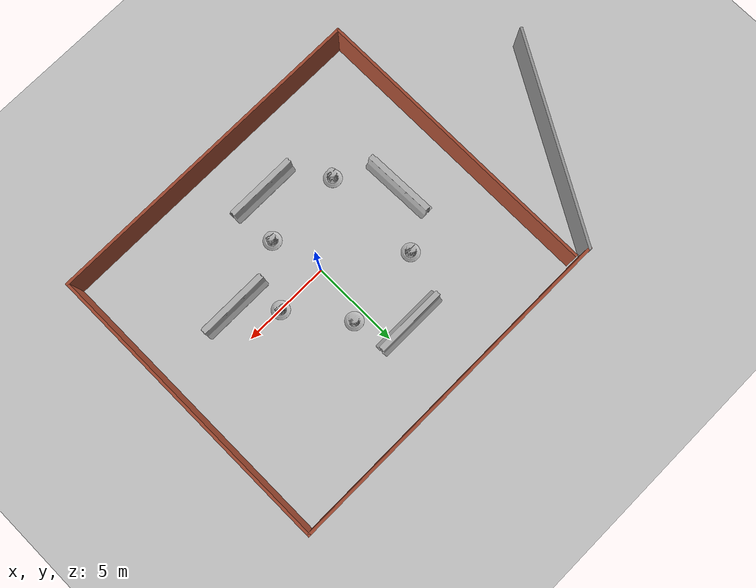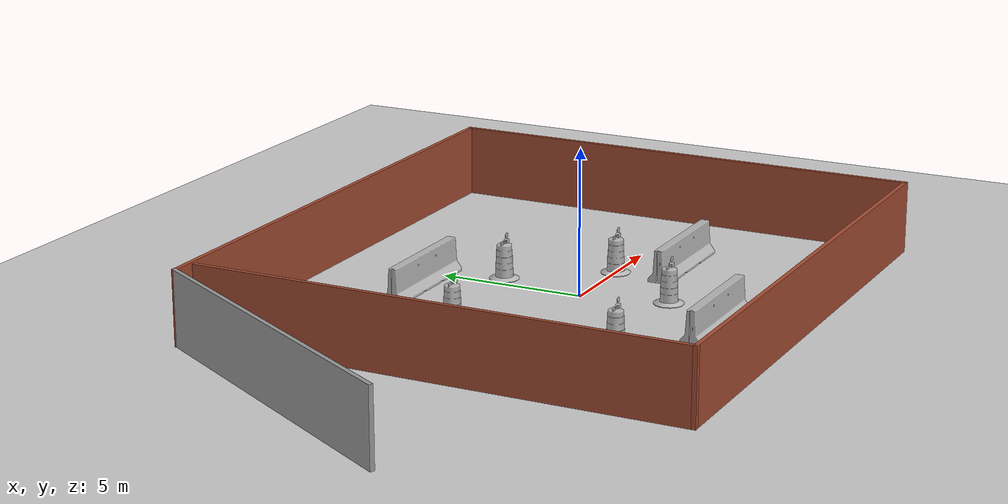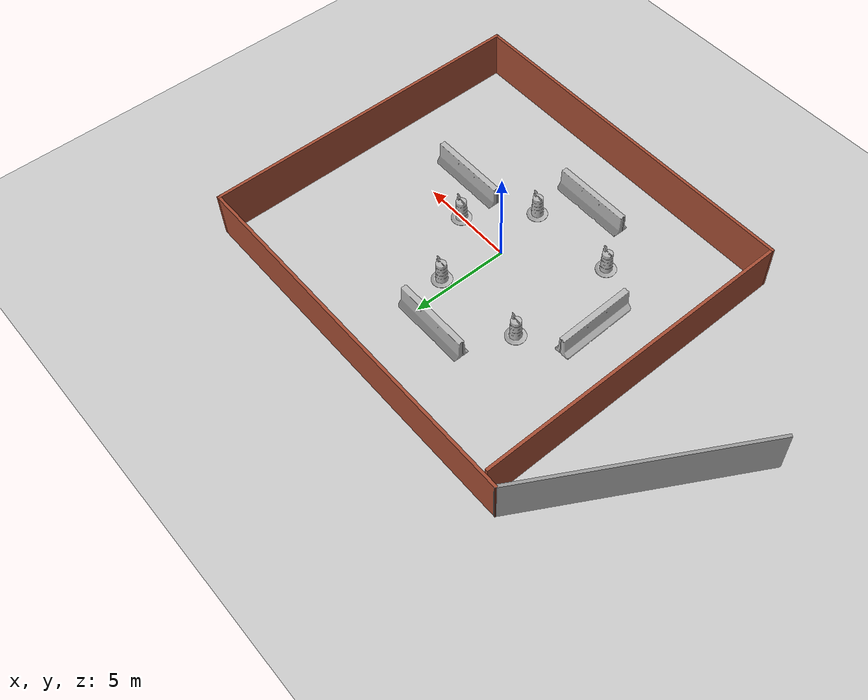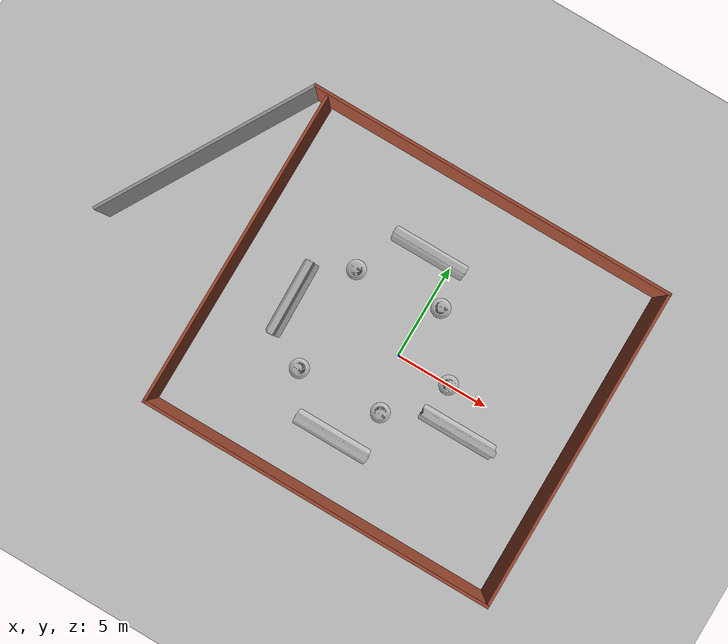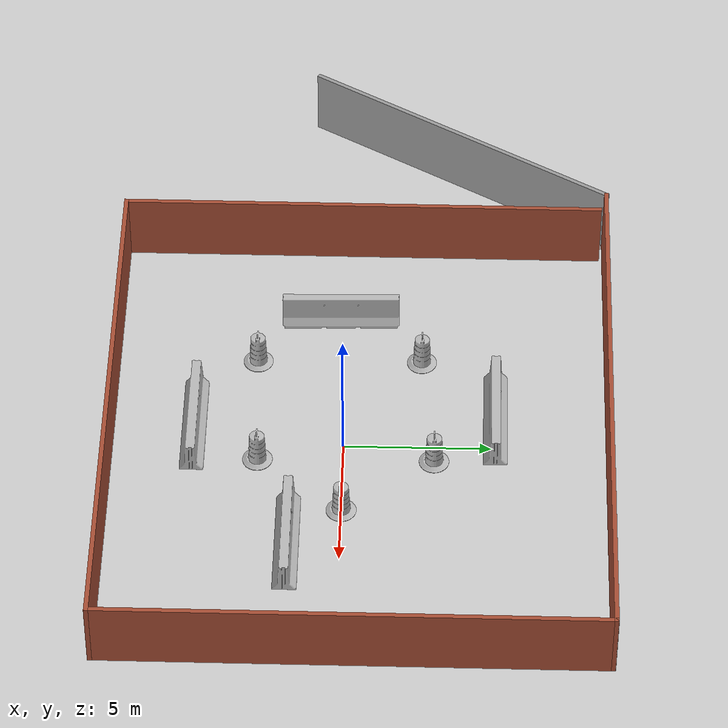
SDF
<sdf version="1.7">
 <world name="default">
  <light name="sun" type="directional">
   <pose>0 0 10 0 -0 0</pose>
   <diffuse>0.8 0.8 0.8 1</diffuse>
   <specular>0.2 0.2 0.2 1</specular>
   <attenuation>
    <range>1000</range>
    <constant>0.9</constant>
    <linear>0.01</linear>
    <quadratic>0.001</quadratic>
   </attenuation>
   <direction>-0.5 0.1 -0.9</direction>
   <spot><inner_angle>0</inner_angle><outer_angle>0</outer_angle><falloff>0</falloff></spot>
  </light>
  <model name="ground_plane">
   <static>1</static>
   <link name="link">
    <collision name="collision">
     <geometry><plane><normal>0 0 1</normal><size>100 100</size></plane></geometry>
     <surface><friction><ode><mu>100</mu><mu2>50</mu2></ode></friction></surface>
    </collision>
    <visual name="visual">
     <cast_shadows>0</cast_shadows>
     <geometry><plane><normal>0 0 1</normal><size>100 100</size></plane></geometry>
     <material>
      <script><uri>file://media/materials/scripts/gazebo.material</uri><name>Gazebo/Grey</name></script>
     </material>
    </visual>
   </link>
  </model>
  <gravity>0 0 -9.8</gravity>
  <magnetic_field>6e-06 2.3e-05 -4.2e-05</magnetic_field>
  <atmosphere type="adiabatic"/>
  <physics type="ode">
   <max_step_size>0.001</max_step_size>
   <real_time_factor>1</real_time_factor>
   <real_time_update_rate>1000</real_time_update_rate>
  </physics>
  <scene><ambient>0.4 0.4 0.4 1</ambient><background>0.7 0.7 0.7 1</background><shadows>1</shadows></scene>
  <audio><device>default</device></audio>
  <spherical_coordinates>
   <surface_model>EARTH_WGS84</surface_model>
   <latitude_deg>0</latitude_deg>
   <longitude_deg>0</longitude_deg>
   <elevation>0</elevation>
   <heading_deg>0</heading_deg>
  </spherical_coordinates>
  <model name="wall">
   <pose>-3.22203 0.54899 0 0 -0 0</pose>
   <link name="Wall_3">
    <collision name="Wall_3_Collision">
     <geometry><box><size>12 0.15 2.5</size></box></geometry>
     <pose>0 0 1.25 0 -0 0</pose>
    </collision>
    <visual name="Wall_3_Visual">
     <pose>0 0 1.25 0 -0 0</pose>
     <geometry><box><size>12 0.15 2.5</size></box></geometry>
     <material>
      <script><uri>file://media/materials/scripts/gazebo.material</uri><name>Gazebo/Grey</name></script>
      <ambient>1 1 1 1</ambient>
     </material>
     <meta><layer>0</layer></meta>
    </visual>
    <pose>-9.66127 3.28007 0 0 -0 1.0472</pose>
   </link>
   <link name="Wall_4">
    <collision name="Wall_4_Collision">
     <geometry><box><size>19.5 0.15 2.5</size></box></geometry>
     <pose>0 0 1.25 0 -0 0</pose>
    </collision>
    <visual name="Wall_4_Visual">
     <pose>0 0 1.25 0 -0 0</pose>
     <geometry><box><size>19.5 0.15 2.5</size></box></geometry>
     <material>
      <script><uri>file://media/materials/scripts/gazebo.material</uri><name>Gazebo/Bricks</name></script>
      <ambient>1 1 1 1</ambient>
     </material>
     <meta><layer>0</layer></meta>
    </visual>
    <pose>2.97623 8.41127 0 0 -0 0</pose>
   </link>
   <link name="Wall_5">
    <collision name="Wall_5_Collision">
     <geometry><box><size>17 0.15 2.5</size></box></geometry>
     <pose>0 0 1.25 0 -0 0</pose>
    </collision>
    <visual name="Wall_5_Visual">
     <pose>0 0 1.25 0 -0 0</pose>
     <geometry><box><size>17 0.15 2.5</size></box></geometry>
     <material>
      <script><uri>file://media/materials/scripts/gazebo.material</uri><name>Gazebo/Bricks</name></script>
      <ambient>1 1 1 1</ambient>
     </material>
     <meta><layer>0</layer></meta>
    </visual>
    <pose>12.6512 -0.013726 0 0 -0 -1.5708</pose>
   </link>
   <link name="Wall_6">
    <collision name="Wall_6_Collision">
     <geometry><box><size>18.75 0.15 2.5</size></box></geometry>
     <pose>0 0 1.25 0 -0 0</pose>
    </collision>
    <visual name="Wall_6_Visual">
     <pose>0 0 1.25 0 -0 0</pose>
     <geometry><box><size>18.75 0.15 2.5</size></box></geometry>
     <material>
      <script><uri>file://media/materials/scripts/gazebo.material</uri><name>Gazebo/Bricks</name></script>
      <ambient>1 1 1 1</ambient>
     </material>
     <meta><layer>0</layer></meta>
    </visual>
    <pose>3.35123 -8.43873 0 0 -0 3.14159</pose>
   </link>
   <link name="Wall_7">
    <collision name="Wall_7_Collision">
     <geometry><box><size>16.75 0.15 2.5</size></box></geometry>
     <pose>0 0 1.25 0 -0 0</pose>
    </collision>
    <visual name="Wall_7_Visual">
     <pose>0 0 1.25 0 -0 0</pose>
     <geometry><box><size>16.75 0.15 2.5</size></box></geometry>
     <material>
      <script><uri>file://media/materials/scripts/gazebo.material</uri><name>Gazebo/Bricks</name></script>
      <ambient>1 1 1 1</ambient>
     </material>
     <meta><layer>0</layer></meta>
    </visual>
    <pose>-5.94877 -0.138726 0 0 -0 1.5708</pose>
   </link>
   <static>1</static>
  </model>
  <model name="Construction Barrel">
   <link name="link">
    <inertial>
     <pose>0 0 0.4 0 -0 0</pose>
     <mass>500</mass>
     <inertia><ixx>51.2096</ixx><iyy>51.2096</iyy><izz>25</izz><ixy>0</ixy><ixz>0</ixz><iyz>0</iyz></inertia>
    </inertial>
    <collision name="collision">
     <geometry><mesh><uri>model://construction_barrel/meshes/construction_barrel.dae</uri></mesh></geometry>
    </collision>
    <visual name="visual">
     <geometry><mesh><uri>model://construction_barrel/meshes/construction_barrel.dae</uri></mesh></geometry>
    </visual>
   </link>
   <pose>-3.87499 -3.05146 0 0 -0 0</pose>
  </model>
  <model name="Construction Barrel_0">
   <link name="link">
    <inertial>
     <pose>0 0 0.4 0 -0 0</pose>
     <mass>500</mass>
     <inertia><ixx>51.2096</ixx><iyy>51.2096</iyy><izz>25</izz><ixy>0</ixy><ixz>0</ixz><iyz>0</iyz></inertia>
    </inertial>
    <collision name="collision">
     <geometry><mesh><uri>model://construction_barrel/meshes/construction_barrel.dae</uri></mesh></geometry>
    </collision>
    <visual name="visual">
     <geometry><mesh><uri>model://construction_barrel/meshes/construction_barrel.dae</uri></mesh></geometry>
    </visual>
   </link>
   <pose>0.677507 -2.88607 0 0 -0 0</pose>
  </model>
  <model name="Construction Barrel_1">
   <link name="link">
    <inertial>
     <pose>0 0 0.4 0 -0 0</pose>
     <mass>500</mass>
     <inertia><ixx>51.2096</ixx><iyy>51.2096</iyy><izz>25</izz><ixy>0</ixy><ixz>0</ixz><iyz>0</iyz></inertia>
    </inertial>
    <collision name="collision">
     <geometry><mesh><uri>model://construction_barrel/meshes/construction_barrel.dae</uri></mesh></geometry>
    </collision>
    <visual name="visual">
     <geometry><mesh><uri>model://construction_barrel/meshes/construction_barrel.dae</uri></mesh></geometry>
    </visual>
   </link>
   <pose>-3.94857 2.59582 0 0 -0 0</pose>
  </model>
  <model name="Construction Barrel_2">
   <link name="link">
    <inertial>
     <pose>0 0 0.4 0 -0 0</pose>
     <mass>500</mass>
     <inertia><ixx>51.2096</ixx><iyy>51.2096</iyy><izz>25</izz><ixy>0</ixy><ixz>0</ixz><iyz>0</iyz></inertia>
    </inertial>
    <collision name="collision">
     <geometry><mesh><uri>model://construction_barrel/meshes/construction_barrel.dae</uri></mesh></geometry>
    </collision>
    <visual name="visual">
     <geometry><mesh><uri>model://construction_barrel/meshes/construction_barrel.dae</uri></mesh></geometry>
    </visual>
   </link>
   <pose>0.632377 3.07651 0 0 -0 0</pose>
  </model>
  <model name="Construction Barrel_3">
   <link name="link">
    <inertial>
     <pose>0 0 0.4 0 -0 0</pose>
     <mass>500</mass>
     <inertia><ixx>51.2096</ixx><iyy>51.2096</iyy><izz>25</izz><ixy>0</ixy><ixz>0</ixz><iyz>0</iyz></inertia>
    </inertial>
    <collision name="collision">
     <geometry><mesh><uri>model://construction_barrel/meshes/construction_barrel.dae</uri></mesh></geometry>
    </collision>
    <visual name="visual">
     <geometry><mesh><uri>model://construction_barrel/meshes/construction_barrel.dae</uri></mesh></geometry>
    </visual>
   </link>
   <pose>2.88605 0.009344 0 0 -0 0</pose>
  </model>
  <model name="jersey_barrier">
   <static>1</static>
   <link name="link">
    <visual name="visual">
     <geometry><mesh><uri>model://jersey_barrier/meshes/jersey_barrier.dae</uri></mesh></geometry>
    </visual>
    <collision name="upright">
     <pose>0 0 0.5715 0 -0 0</pose>
     <geometry><box><size>4.06542 0.3063 1.143</size></box></geometry>
    </collision>
    <collision name="base">
     <pose>0 0 0.032258 0 -0 0</pose>
     <geometry><box><size>4.06542 0.8107 0.064516</size></box></geometry>
    </collision>
    <collision name="base2">
     <pose>0 0 0.1 0 -0 0</pose>
     <geometry><box><size>4.06542 0.65 0.1</size></box></geometry>
    </collision>
    <collision name="base3">
     <pose>0 0 0.2 0 -0 0</pose>
     <geometry><box><size>4.06542 0.5 0.1</size></box></geometry>
    </collision>
    <collision name="left-angle">
     <pose>0 -0.224 0.2401 0.9 -0 0</pose>
     <geometry><box><size>4.06542 0.5 0.064516</size></box></geometry>
    </collision>
    <collision name="right-angle">
     <pose>0 0.224 0.2401 -0.9 0 0</pose>
     <geometry><box><size>4.06542 0.5 0.064516</size></box></geometry>
    </collision>
   </link>
   <pose>4.40761 -1.7583 0 0 -0 0</pose>
  </model>
  <model name="jersey_barrier_0">
   <static>1</static>
   <link name="link">
    <visual name="visual">
     <geometry><mesh><uri>model://jersey_barrier/meshes/jersey_barrier.dae</uri></mesh></geometry>
    </visual>
    <collision name="upright">
     <pose>0 0 0.5715 0 -0 0</pose>
     <geometry><box><size>4.06542 0.3063 1.143</size></box></geometry>
    </collision>
    <collision name="base">
     <pose>0 0 0.032258 0 -0 0</pose>
     <geometry><box><size>4.06542 0.8107 0.064516</size></box></geometry>
    </collision>
    <collision name="base2">
     <pose>0 0 0.1 0 -0 0</pose>
     <geometry><box><size>4.06542 0.65 0.1</size></box></geometry>
    </collision>
    <collision name="base3">
     <pose>0 0 0.2 0 -0 0</pose>
     <geometry><box><size>4.06542 0.5 0.1</size></box></geometry>
    </collision>
    <collision name="left-angle">
     <pose>0 -0.224 0.2401 0.9 -0 0</pose>
     <geometry><box><size>4.06542 0.5 0.064516</size></box></geometry>
    </collision>
    <collision name="right-angle">
     <pose>0 0.224 0.2401 -0.9 0 0</pose>
     <geometry><box><size>4.06542 0.5 0.064516</size></box></geometry>
    </collision>
   </link>
   <pose>-5.94914 -0.255722 0 0 0 -1.54591</pose>
  </model>
  <model name="jersey_barrier_1">
   <static>1</static>
   <link name="link">
    <visual name="visual">
     <geometry><mesh><uri>model://jersey_barrier/meshes/jersey_barrier.dae</uri></mesh></geometry>
    </visual>
    <collision name="upright">
     <pose>0 0 0.5715 0 -0 0</pose>
     <geometry><box><size>4.06542 0.3063 1.143</size></box></geometry>
    </collision>
    <collision name="base">
     <pose>0 0 0.032258 0 -0 0</pose>
     <geometry><box><size>4.06542 0.8107 0.064516</size></box></geometry>
    </collision>
    <collision name="base2">
     <pose>0 0 0.1 0 -0 0</pose>
     <geometry><box><size>4.06542 0.65 0.1</size></box></geometry>
    </collision>
    <collision name="base3">
     <pose>0 0 0.2 0 -0 0</pose>
     <geometry><box><size>4.06542 0.5 0.1</size></box></geometry>
    </collision>
    <collision name="left-angle">
     <pose>0 -0.224 0.2401 0.9 -0 0</pose>
     <geometry><box><size>4.06542 0.5 0.064516</size></box></geometry>
    </collision>
    <collision name="right-angle">
     <pose>0 0.224 0.2401 -0.9 0 0</pose>
     <geometry><box><size>4.06542 0.5 0.064516</size></box></geometry>
    </collision>
   </link>
   <pose>-0.778058 -5.10205 0 0 -0 0</pose>
  </model>
  <model name="jersey_barrier_2">
   <static>1</static>
   <link name="link">
    <visual name="visual">
     <geometry><mesh><uri>model://jersey_barrier/meshes/jersey_barrier.dae</uri></mesh></geometry>
    </visual>
    <collision name="upright">
     <pose>0 0 0.5715 0 -0 0</pose>
     <geometry><box><size>4.06542 0.3063 1.143</size></box></geometry>
    </collision>
    <collision name="base">
     <pose>0 0 0.032258 0 -0 0</pose>
     <geometry><box><size>4.06542 0.8107 0.064516</size></box></geometry>
    </collision>
    <collision name="base2">
     <pose>0 0 0.1 0 -0 0</pose>
     <geometry><box><size>4.06542 0.65 0.1</size></box></geometry>
    </collision>
    <collision name="base3">
     <pose>0 0 0.2 0 -0 0</pose>
     <geometry><box><size>4.06542 0.5 0.1</size></box></geometry>
    </collision>
    <collision name="left-angle">
     <pose>0 -0.224 0.2401 0.9 -0 0</pose>
     <geometry><box><size>4.06542 0.5 0.064516</size></box></geometry>
    </collision>
    <collision name="right-angle">
     <pose>0 0.224 0.2401 -0.9 0 0</pose>
     <geometry><box><size>4.06542 0.5 0.064516</size></box></geometry>
    </collision>
   </link>
   <pose>-1.25686 5.14116 0 0 -0 0</pose>
  </model>
 </world>
</sdf>
